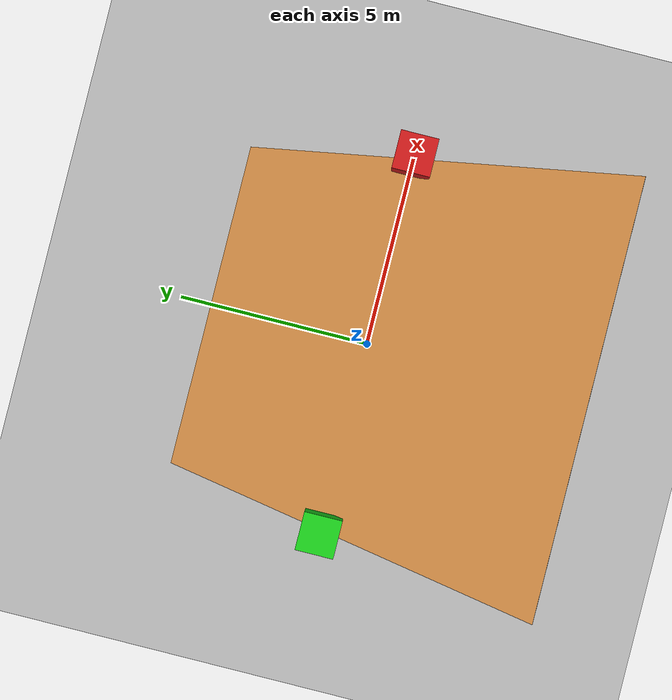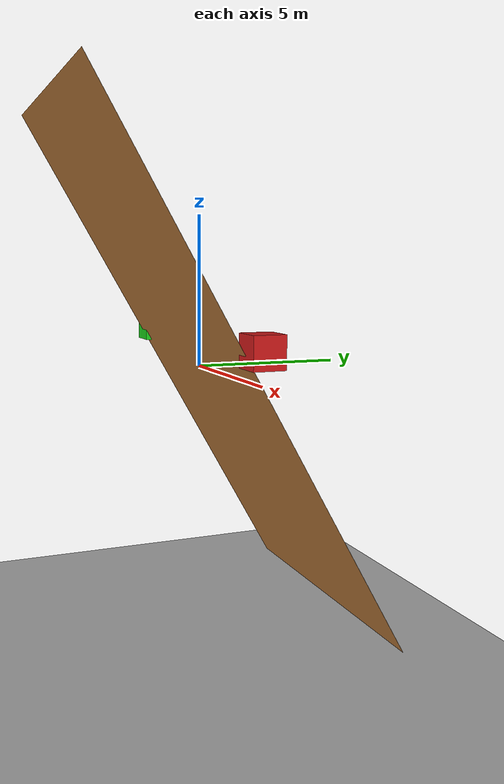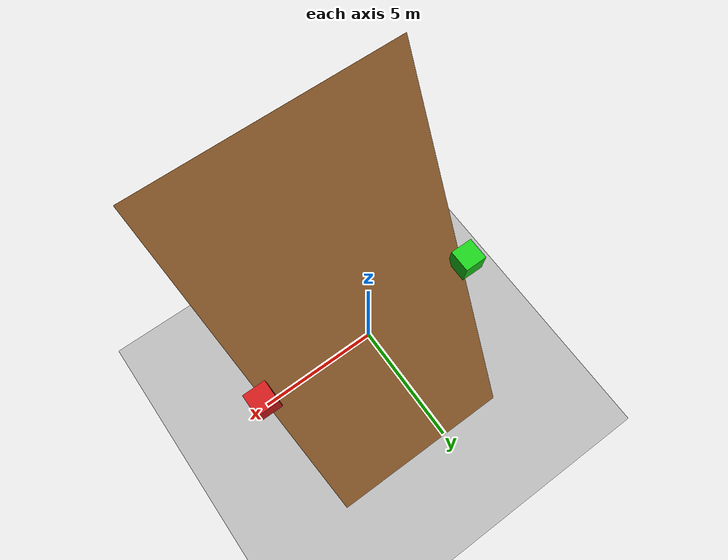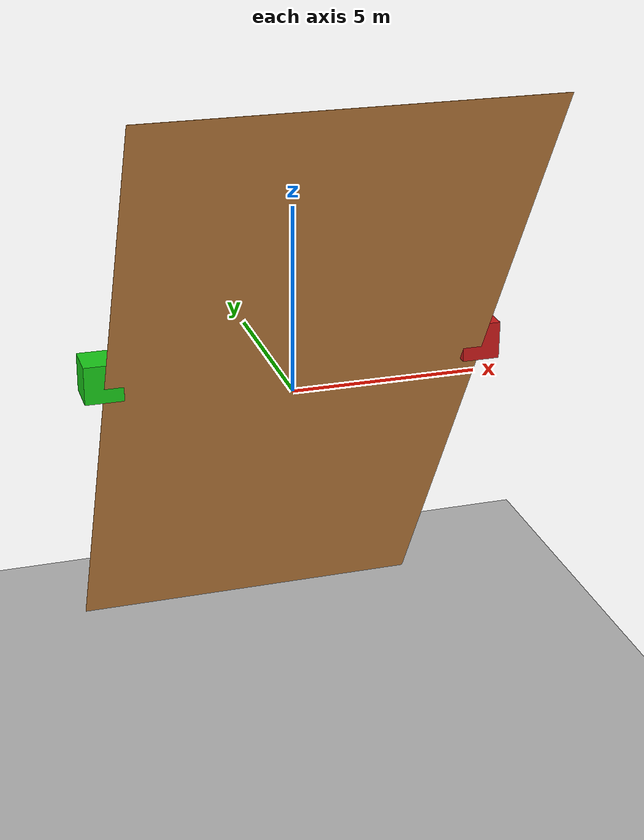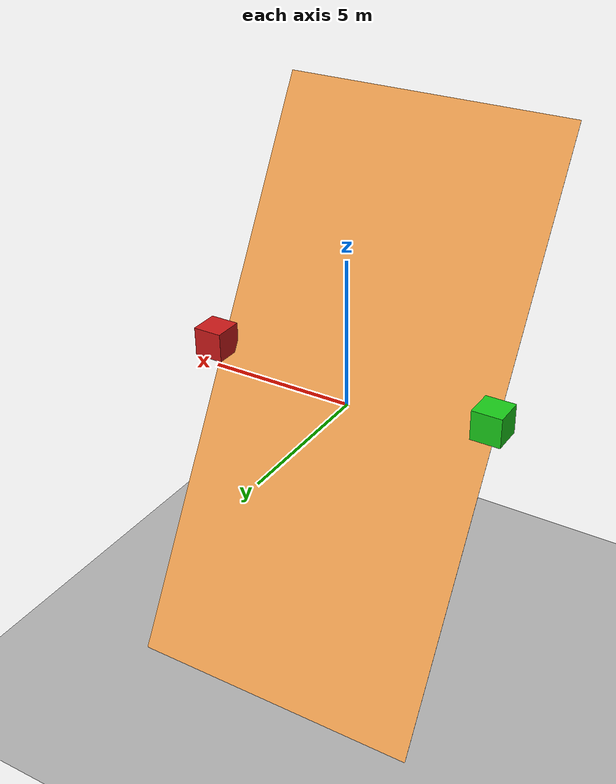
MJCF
<mujoco>
  <option gravity="0 0 -9.81"/>
  <worldbody>
    <!-- Frictionless Ramp -->
    <body name="ramp" pos="0 0 0">
      <geom type="plane" size="5 10 0.1" rgba="0.9 0.6 0.3 1" friction="0 0 0" quat="0.5 0.86 0 0"/>
    </body>
    <!-- Ground Surface -->
    <body name="surface" pos="-10 0 -10">
      <geom type="plane" size="30 30 0.1" rgba="0.7 0.7 0.7 1" friction="1 1 1"/>
    </body>
    <!-- Lighter Block -->
    <body name="block_light" pos="-5 0 1">
      <geom type="box" size="0.5 0.5 0.5" density="1" rgba="0.1 0.8 0.1 1"/>
      <joint name="block_light_joint" type="free"/>
    </body>
    <!-- Heavier Block -->
    <body name="block_heavy" pos="5 0 1">
      <geom type="box" size="0.5 0.5 0.5" density="2" rgba="0.8 0.1 0.1 1"/>
      <joint name="block_heavy_joint" type="free"/>
    </body>
  </worldbody>
</mujoco>
